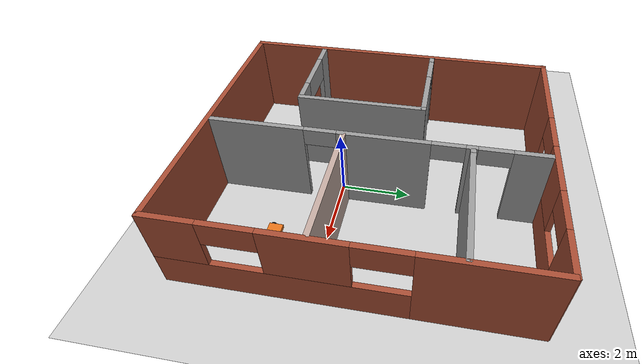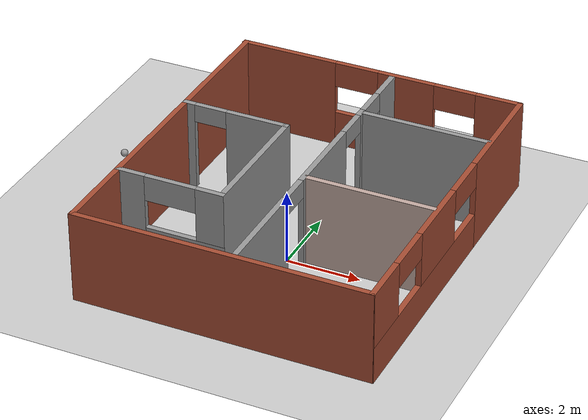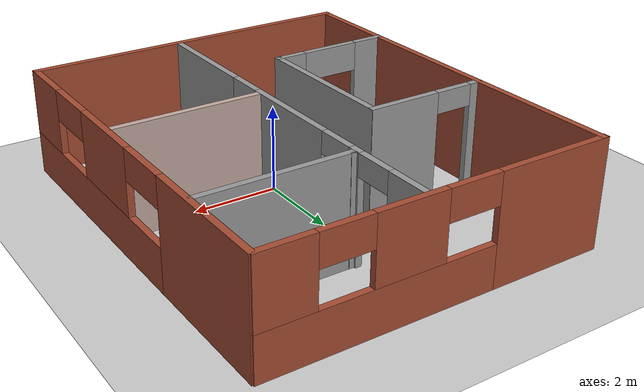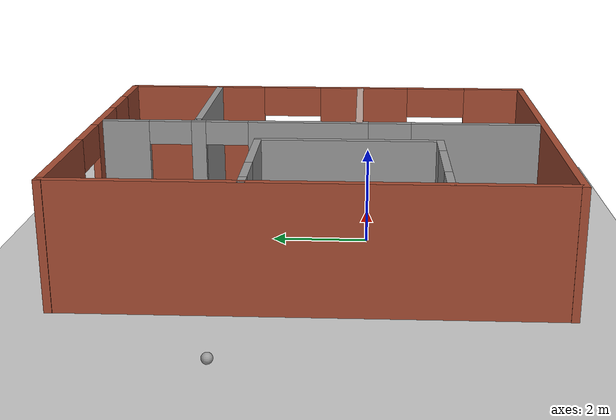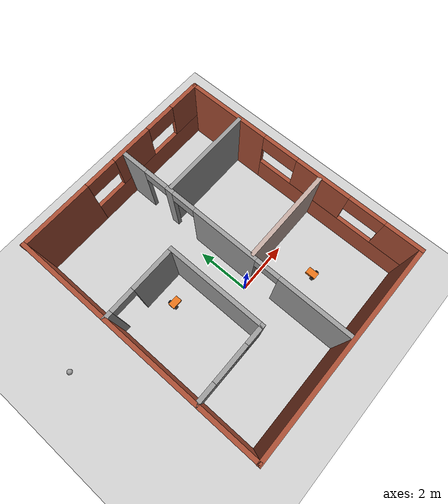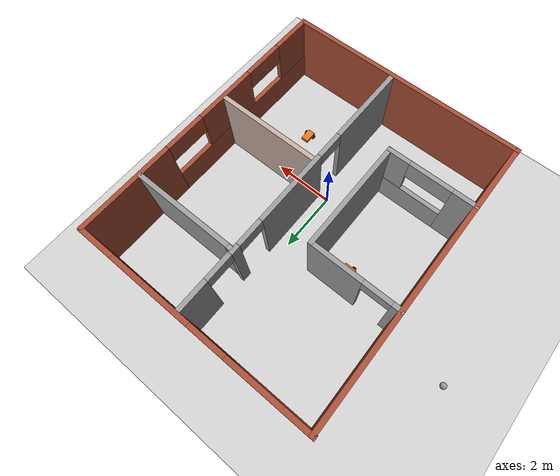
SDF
<sdf version="1.6">
 <world name="default">
  <light name="sun" type="directional">
   <pose>0 0 10 0 -0 0</pose>
   <diffuse>0.8 0.8 0.8 1</diffuse>
   <specular>0.2 0.2 0.2 1</specular>
   <attenuation>
    <range>1000</range>
    <constant>0.9</constant>
    <linear>0.01</linear>
    <quadratic>0.001</quadratic>
   </attenuation>
   <direction>-0.5 0.1 -0.9</direction>
   <spot><inner_angle>0</inner_angle><outer_angle>0</outer_angle><falloff>0</falloff></spot>
  </light>
  <include><uri>model://ground_plane</uri></include>
  <include><uri>model://my_building</uri></include>
  <include><uri>model://my_bot</uri><name>my_bot_1</name><pose>-2 1.5 0 0 0 0</pose></include>
  <include><uri>model://my_bot</uri><name>my_bot_2</name><pose>2 -1.5 0 0 0 1.5707</pose></include>
  <include><uri>model://my_ball</uri><pose>-6.02926 2.53512 0.1 0 0 0</pose></include>
  <plugin filename="libcollision_map_creator.so" name="collision_map_creator"/>
 </world>
</sdf>

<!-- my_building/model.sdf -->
<sdf version='1.7'>
  <model name='my_world_example'>
    <pose>-0.006622 1.02346 0 0 -0 0</pose>
    <link name='Wall_14'>
      <collision name='Wall_14_Collision'>
        <geometry>
          <box>
            <size>0.15 0.15 2.5</size>
          </box>
        </geometry>
        <pose>0 0 1.25 0 -0 0</pose>
      </collision>
      <visual name='Wall_14_Visual'>
        <pose>0 0 1.25 0 -0 0</pose>
        <geometry>
          <box>
            <size>0.15 0.15 2.5</size>
          </box>
        </geometry>
        <material>
          <script>
            <uri>file://media/materials/scripts/gazebo.material</uri>
            <name>Gazebo/Grey</name>
          </script>
          <ambient>1 1 1 1</ambient>
        </material>
        <meta>
          <layer>0</layer>
        </meta>
      </visual>
      <pose>0.509968 2.60791 0 0 -0 0</pose>
    </link>
    <link name='Wall_3'>
      <pose>3.93862 -0.015464 0 0 -0 -1.5708</pose>
      <visual name='Wall_3_Visual_0'>
        <pose>-3.13619 0 1.25 0 -0 0</pose>
        <geometry>
          <box>
            <size>3.22762 0.15 2.5</size>
          </box>
        </geometry>
        <material>
          <script>
            <uri>file://media/materials/scripts/gazebo.material</uri>
            <name>Gazebo/Bricks</name>
          </script>
          <ambient>1 1 1 1</ambient>
        </material>
        <meta>
          <layer>0</layer>
        </meta>
      </visual>
      <collision name='Wall_3_Collision_0'>
        <geometry>
          <box>
            <size>3.22762 0.15 2.5</size>
          </box>
        </geometry>
        <pose>-3.13619 0 1.25 0 -0 0</pose>
      </collision>
      <visual name='Wall_3_Visual_1'>
        <pose>1.61381 0 0.5 0 -0 0</pose>
        <geometry>
          <box>
            <size>6.27238 0.15 1</size>
          </box>
        </geometry>
        <material>
          <script>
            <uri>file://media/materials/scripts/gazebo.material</uri>
            <name>Gazebo/Bricks</name>
          </script>
          <ambient>1 1 1 1</ambient>
        </material>
        <meta>
          <layer>0</layer>
        </meta>
      </visual>
      <collision name='Wall_3_Collision_1'>
        <geometry>
          <box>
            <size>6.27238 0.15 1</size>
          </box>
        </geometry>
        <pose>1.61381 0 0.5 0 -0 0</pose>
      </collision>
      <visual name='Wall_3_Visual_2'>
        <pose>0.90617 0 1.75 0 -0 0</pose>
        <geometry>
          <box>
            <size>2.10109 0.15 1.5</size>
          </box>
        </geometry>
        <material>
          <script>
            <uri>file://media/materials/scripts/gazebo.material</uri>
            <name>Gazebo/Bricks</name>
          </script>
          <ambient>1 1 1 1</ambient>
        </material>
        <meta>
          <layer>0</layer>
        </meta>
      </visual>
      <collision name='Wall_3_Collision_2'>
        <geometry>
          <box>
            <size>2.10109 0.15 1.5</size>
          </box>
        </geometry>
        <pose>0.90617 0 1.75 0 -0 0</pose>
      </collision>
      <visual name='Wall_3_Visual_3'>
        <pose>4.03836 0 1.75 0 -0 0</pose>
        <geometry>
          <box>
            <size>1.42328 0.15 1.5</size>
          </box>
        </geometry>
        <material>
          <script>
            <uri>file://media/materials/scripts/gazebo.material</uri>
            <name>Gazebo/Bricks</name>
          </script>
          <ambient>1 1 1 1</ambient>
        </material>
        <meta>
          <layer>0</layer>
        </meta>
      </visual>
      <collision name='Wall_3_Collision_3'>
        <geometry>
          <box>
            <size>1.42328 0.15 1.5</size>
          </box>
        </geometry>
        <pose>4.03836 0 1.75 0 -0 0</pose>
      </collision>
      <visual name='Wall_3_Visual_4'>
        <pose>-0.833377 0 2.15 0 -0 0</pose>
        <geometry>
          <box>
            <size>1.378 0.15 0.7</size>
          </box>
        </geometry>
        <material>
          <script>
            <uri>file://media/materials/scripts/gazebo.material</uri>
            <name>Gazebo/Bricks</name>
          </script>
          <ambient>1 1 1 1</ambient>
        </material>
        <meta>
          <layer>0</layer>
        </meta>
      </visual>
      <collision name='Wall_3_Collision_4'>
        <geometry>
          <box>
            <size>1.378 0.15 0.7</size>
          </box>
        </geometry>
        <pose>-0.833377 0 2.15 0 -0 0</pose>
      </collision>
      <visual name='Wall_3_Visual_5'>
        <pose>2.64172 0 2.15 0 -0 0</pose>
        <geometry>
          <box>
            <size>1.37 0.15 0.7</size>
          </box>
        </geometry>
        <material>
          <script>
            <uri>file://media/materials/scripts/gazebo.material</uri>
            <name>Gazebo/Bricks</name>
          </script>
          <ambient>1 1 1 1</ambient>
        </material>
        <meta>
          <layer>0</layer>
        </meta>
      </visual>
      <collision name='Wall_3_Collision_5'>
        <geometry>
          <box>
            <size>1.37 0.15 0.7</size>
          </box>
        </geometry>
        <pose>2.64172 0 2.15 0 -0 0</pose>
      </collision>
    </link>
    <link name='Wall_33'>
      <collision name='Wall_33_Collision'>
        <geometry>
          <box>
            <size>9.5 0.15 2.5</size>
          </box>
        </geometry>
        <pose>0 0 1.25 0 -0 0</pose>
      </collision>
      <visual name='Wall_33_Visual'>
        <pose>0 0 1.25 0 -0 0</pose>
        <geometry>
          <box>
            <size>9.5 0.15 2.5</size>
          </box>
        </geometry>
        <material>
          <script>
            <uri>file://media/materials/scripts/gazebo.material</uri>
            <name>Gazebo/Bricks</name>
          </script>
          <ambient>1 1 1 1</ambient>
        </material>
        <meta>
          <layer>0</layer>
        </meta>
      </visual>
      <pose>-3.92017 0.013616 0 0 -0 -1.5708</pose>
    </link>
    <link name='Wall_35'>
      <pose>-2.48639 1.16661 0 0 -0 0</pose>
      <visual name='Wall_35_Visual_0'>
        <pose>-1.32433 0 1.25 0 -0 0</pose>
        <geometry>
          <box>
            <size>0.35134 0.15 2.5</size>
          </box>
        </geometry>
        <material>
          <script>
            <uri>file://media/materials/scripts/gazebo.material</uri>
            <name>Gazebo/Grey</name>
          </script>
          <ambient>1 1 1 1</ambient>
        </material>
        <meta>
          <layer>0</layer>
        </meta>
      </visual>
      <collision name='Wall_35_Collision_0'>
        <geometry>
          <box>
            <size>0.35134 0.15 2.5</size>
          </box>
        </geometry>
        <pose>-1.32433 0 1.25 0 -0 0</pose>
      </collision>
      <visual name='Wall_35_Visual_1'>
        <pose>0.62567 0 1.25 0 -0 0</pose>
        <geometry>
          <box>
            <size>1.74866 0.15 2.5</size>
          </box>
        </geometry>
        <material>
          <script>
            <uri>file://media/materials/scripts/gazebo.material</uri>
            <name>Gazebo/Grey</name>
          </script>
          <ambient>1 1 1 1</ambient>
        </material>
        <meta>
          <layer>0</layer>
        </meta>
      </visual>
      <collision name='Wall_35_Collision_1'>
        <geometry>
          <box>
            <size>1.74866 0.15 2.5</size>
          </box>
        </geometry>
        <pose>0.62567 0 1.25 0 -0 0</pose>
      </collision>
      <visual name='Wall_35_Visual_2'>
        <pose>-0.69866 0 2.25 0 -0 0</pose>
        <geometry>
          <box>
            <size>0.9 0.15 0.5</size>
          </box>
        </geometry>
        <material>
          <script>
            <uri>file://media/materials/scripts/gazebo.material</uri>
            <name>Gazebo/Grey</name>
          </script>
          <ambient>1 1 1 1</ambient>
        </material>
        <meta>
          <layer>0</layer>
        </meta>
      </visual>
      <collision name='Wall_35_Collision_2'>
        <geometry>
          <box>
            <size>0.9 0.15 0.5</size>
          </box>
        </geometry>
        <pose>-0.69866 0 2.25 0 -0 0</pose>
      </collision>
    </link>
    <link name='Wall_38'>
      <pose>-0.013622 4.69452 0 0 -0 0</pose>
      <visual name='Wall_38_Visual_0'>
        <pose>-2.6211 0 1.25 0 -0 0</pose>
        <geometry>
          <box>
            <size>2.75779 0.15 2.5</size>
          </box>
        </geometry>
        <material>
          <script>
            <uri>file://media/materials/scripts/gazebo.material</uri>
            <name>Gazebo/Bricks</name>
          </script>
          <ambient>1 1 1 1</ambient>
        </material>
        <meta>
          <layer>0</layer>
        </meta>
      </visual>
      <collision name='Wall_38_Collision_0'>
        <geometry>
          <box>
            <size>2.75779 0.15 2.5</size>
          </box>
        </geometry>
        <pose>-2.6211 0 1.25 0 -0 0</pose>
      </collision>
      <visual name='Wall_38_Visual_1'>
        <pose>1.3789 0 0.5 0 -0 0</pose>
        <geometry>
          <box>
            <size>5.24221 0.15 1</size>
          </box>
        </geometry>
        <material>
          <script>
            <uri>file://media/materials/scripts/gazebo.material</uri>
            <name>Gazebo/Bricks</name>
          </script>
          <ambient>1 1 1 1</ambient>
        </material>
        <meta>
          <layer>0</layer>
        </meta>
      </visual>
      <collision name='Wall_38_Collision_1'>
        <geometry>
          <box>
            <size>5.24221 0.15 1</size>
          </box>
        </geometry>
        <pose>1.3789 0 0.5 0 -0 0</pose>
      </collision>
      <visual name='Wall_38_Visual_2'>
        <pose>0.777661 0 1.75 0 -0 0</pose>
        <geometry>
          <box>
            <size>1.59774 0.15 1.5</size>
          </box>
        </geometry>
        <material>
          <script>
            <uri>file://media/materials/scripts/gazebo.material</uri>
            <name>Gazebo/Bricks</name>
          </script>
          <ambient>1 1 1 1</ambient>
        </material>
        <meta>
          <layer>0</layer>
        </meta>
      </visual>
      <collision name='Wall_38_Collision_2'>
        <geometry>
          <box>
            <size>1.59774 0.15 1.5</size>
          </box>
        </geometry>
        <pose>0.777661 0 1.75 0 -0 0</pose>
      </collision>
      <visual name='Wall_38_Visual_3'>
        <pose>3.36977 0 1.75 0 -0 0</pose>
        <geometry>
          <box>
            <size>1.26047 0.15 1.5</size>
          </box>
        </geometry>
        <material>
          <script>
            <uri>file://media/materials/scripts/gazebo.material</uri>
            <name>Gazebo/Bricks</name>
          </script>
          <ambient>1 1 1 1</ambient>
        </material>
        <meta>
          <layer>0</layer>
        </meta>
      </visual>
      <collision name='Wall_38_Collision_3'>
        <geometry>
          <box>
            <size>1.26047 0.15 1.5</size>
          </box>
        </geometry>
        <pose>3.36977 0 1.75 0 -0 0</pose>
      </collision>
      <visual name='Wall_38_Visual_4'>
        <pose>-0.631709 0 2.15 0 -0 0</pose>
        <geometry>
          <box>
            <size>1.221 0.15 0.7</size>
          </box>
        </geometry>
        <material>
          <script>
            <uri>file://media/materials/scripts/gazebo.material</uri>
            <name>Gazebo/Bricks</name>
          </script>
          <ambient>1 1 1 1</ambient>
        </material>
        <meta>
          <layer>0</layer>
        </meta>
      </visual>
      <collision name='Wall_38_Collision_4'>
        <geometry>
          <box>
            <size>1.221 0.15 0.7</size>
          </box>
        </geometry>
        <pose>-0.631709 0 2.15 0 -0 0</pose>
      </collision>
      <visual name='Wall_38_Visual_5'>
        <pose>2.15803 0 2.15 0 -0 0</pose>
        <geometry>
          <box>
            <size>1.163 0.15 0.7</size>
          </box>
        </geometry>
        <material>
          <script>
            <uri>file://media/materials/scripts/gazebo.material</uri>
            <name>Gazebo/Bricks</name>
          </script>
          <ambient>1 1 1 1</ambient>
        </material>
        <meta>
          <layer>0</layer>
        </meta>
      </visual>
      <collision name='Wall_38_Collision_5'>
        <geometry>
          <box>
            <size>1.163 0.15 0.7</size>
          </box>
        </geometry>
        <pose>2.15803 0 2.15 0 -0 0</pose>
      </collision>
    </link>
    <link name='Wall_42'>
      <pose>0.387902 0.000987 0 0 -0 -1.5708</pose>
      <visual name='Wall_42_Visual_0'>
        <pose>-4.12408 0 1.25 0 -0 0</pose>
        <geometry>
          <box>
            <size>1.00184 0.15 2.5</size>
          </box>
        </geometry>
        <material>
          <script>
            <uri>file://media/materials/scripts/gazebo.material</uri>
            <name>Gazebo/Grey</name>
          </script>
          <ambient>1 1 1 1</ambient>
        </material>
        <meta>
          <layer>0</layer>
        </meta>
      </visual>
      <collision name='Wall_42_Collision_0'>
        <geometry>
          <box>
            <size>1.00184 0.15 2.5</size>
          </box>
        </geometry>
        <pose>-4.12408 0 1.25 0 -0 0</pose>
      </collision>
      <visual name='Wall_42_Visual_1'>
        <pose>-2.5695 0 1.25 0 -0 0</pose>
        <geometry>
          <box>
            <size>0.307325 0.15 2.5</size>
          </box>
        </geometry>
        <material>
          <script>
            <uri>file://media/materials/scripts/gazebo.material</uri>
            <name>Gazebo/Grey</name>
          </script>
          <ambient>1 1 1 1</ambient>
        </material>
        <meta>
          <layer>0</layer>
        </meta>
      </visual>
      <collision name='Wall_42_Collision_1'>
        <geometry>
          <box>
            <size>0.307325 0.15 2.5</size>
          </box>
        </geometry>
        <pose>-2.5695 0 1.25 0 -0 0</pose>
      </collision>
      <visual name='Wall_42_Visual_2'>
        <pose>-0.245259 0 1.25 0 -0 0</pose>
        <geometry>
          <box>
            <size>2.54116 0.15 2.5</size>
          </box>
        </geometry>
        <material>
          <script>
            <uri>file://media/materials/scripts/gazebo.material</uri>
            <name>Gazebo/Grey</name>
          </script>
          <ambient>1 1 1 1</ambient>
        </material>
        <meta>
          <layer>0</layer>
        </meta>
      </visual>
      <collision name='Wall_42_Collision_2'>
        <geometry>
          <box>
            <size>2.54116 0.15 2.5</size>
          </box>
        </geometry>
        <pose>-0.245259 0 1.25 0 -0 0</pose>
      </collision>
      <visual name='Wall_42_Visual_3'>
        <pose>3.27516 0 1.25 0 -0 0</pose>
        <geometry>
          <box>
            <size>2.69968 0.15 2.5</size>
          </box>
        </geometry>
        <material>
          <script>
            <uri>file://media/materials/scripts/gazebo.material</uri>
            <name>Gazebo/Grey</name>
          </script>
          <ambient>1 1 1 1</ambient>
        </material>
        <meta>
          <layer>0</layer>
        </meta>
      </visual>
      <collision name='Wall_42_Collision_3'>
        <geometry>
          <box>
            <size>2.69968 0.15 2.5</size>
          </box>
        </geometry>
        <pose>3.27516 0 1.25 0 -0 0</pose>
      </collision>
      <visual name='Wall_42_Visual_4'>
        <pose>-3.17316 0 2.25 0 -0 0</pose>
        <geometry>
          <box>
            <size>0.9 0.15 0.5</size>
          </box>
        </geometry>
        <material>
          <script>
            <uri>file://media/materials/scripts/gazebo.material</uri>
            <name>Gazebo/Grey</name>
          </script>
          <ambient>1 1 1 1</ambient>
        </material>
        <meta>
          <layer>0</layer>
        </meta>
      </visual>
      <collision name='Wall_42_Collision_4'>
        <geometry>
          <box>
            <size>0.9 0.15 0.5</size>
          </box>
        </geometry>
        <pose>-3.17316 0 2.25 0 -0 0</pose>
      </collision>
      <visual name='Wall_42_Visual_5'>
        <pose>-1.96584 0 2.25 0 -0 0</pose>
        <geometry>
          <box>
            <size>0.9 0.15 0.5</size>
          </box>
        </geometry>
        <material>
          <script>
            <uri>file://media/materials/scripts/gazebo.material</uri>
            <name>Gazebo/Grey</name>
          </script>
          <ambient>1 1 1 1</ambient>
        </material>
        <meta>
          <layer>0</layer>
        </meta>
      </visual>
      <collision name='Wall_42_Collision_5'>
        <geometry>
          <box>
            <size>0.9 0.15 0.5</size>
          </box>
        </geometry>
        <pose>-1.96584 0 2.25 0 -0 0</pose>
      </collision>
      <visual name='Wall_42_Visual_6'>
        <pose>1.47532 0 2.25 0 -0 0</pose>
        <geometry>
          <box>
            <size>0.9 0.15 0.5</size>
          </box>
        </geometry>
        <material>
          <script>
            <uri>file://media/materials/scripts/gazebo.material</uri>
            <name>Gazebo/Grey</name>
          </script>
          <ambient>1 1 1 1</ambient>
        </material>
        <meta>
          <layer>0</layer>
        </meta>
      </visual>
      <collision name='Wall_42_Collision_6'>
        <geometry>
          <box>
            <size>0.9 0.15 0.5</size>
          </box>
        </geometry>
        <pose>1.47532 0 2.25 0 -0 0</pose>
      </collision>
    </link>
    <link name='Wall_45'>
      <collision name='Wall_45_Collision'>
        <geometry>
          <box>
            <size>3.75 0.15 2.5</size>
          </box>
        </geometry>
        <pose>0 0 1.25 0 -0 0</pose>
      </collision>
      <visual name='Wall_45_Visual'>
        <pose>0 0 1.25 0 -0 0</pose>
        <geometry>
          <box>
            <size>3.75 0.15 2.5</size>
          </box>
        </geometry>
        <material>
          <script>
            <uri>file://media/materials/scripts/gazebo.material</uri>
            <name>Gazebo/Grey</name>
          </script>
          <ambient>1 1 1 1</ambient>
        </material>
        <meta>
          <layer>0</layer>
        </meta>
      </visual>
      <pose>-1.05416 -0.637427 0 0 -0 1.5708</pose>
    </link>
    <link name='Wall_52'>
      <pose>-2.47916 -2.43743 0 0 -0 0</pose>
      <visual name='Wall_52_Visual_0'>
        <pose>-1.09324 0 1.25 0 -0 0</pose>
        <geometry>
          <box>
            <size>0.813526 0.15 2.5</size>
          </box>
        </geometry>
        <material>
          <script>
            <uri>file://media/materials/scripts/gazebo.material</uri>
            <name>Gazebo/Grey</name>
          </script>
          <ambient>1 1 1 1</ambient>
        </material>
        <meta>
          <layer>0</layer>
        </meta>
      </visual>
      <collision name='Wall_52_Collision_0'>
        <geometry>
          <box>
            <size>0.813526 0.15 2.5</size>
          </box>
        </geometry>
        <pose>-1.09324 0 1.25 0 -0 0</pose>
      </collision>
      <visual name='Wall_52_Visual_1'>
        <pose>0.406763 0 0.5 0 -0 0</pose>
        <geometry>
          <box>
            <size>2.18647 0.15 1</size>
          </box>
        </geometry>
        <material>
          <script>
            <uri>file://media/materials/scripts/gazebo.material</uri>
            <name>Gazebo/Grey</name>
          </script>
          <ambient>1 1 1 1</ambient>
        </material>
        <meta>
          <layer>0</layer>
        </meta>
      </visual>
      <collision name='Wall_52_Collision_1'>
        <geometry>
          <box>
            <size>2.18647 0.15 1</size>
          </box>
        </geometry>
        <pose>0.406763 0 0.5 0 -0 0</pose>
      </collision>
      <visual name='Wall_52_Visual_2'>
        <pose>1.11076 0 1.75 0 -0 0</pose>
        <geometry>
          <box>
            <size>0.778474 0.15 1.5</size>
          </box>
        </geometry>
        <material>
          <script>
            <uri>file://media/materials/scripts/gazebo.material</uri>
            <name>Gazebo/Grey</name>
          </script>
          <ambient>1 1 1 1</ambient>
        </material>
        <meta>
          <layer>0</layer>
        </meta>
      </visual>
      <collision name='Wall_52_Collision_2'>
        <geometry>
          <box>
            <size>0.778474 0.15 1.5</size>
          </box>
        </geometry>
        <pose>1.11076 0 1.75 0 -0 0</pose>
      </collision>
      <visual name='Wall_52_Visual_3'>
        <pose>0.017526 0 2.15 0 -0 0</pose>
        <geometry>
          <box>
            <size>1.408 0.15 0.7</size>
          </box>
        </geometry>
        <material>
          <script>
            <uri>file://media/materials/scripts/gazebo.material</uri>
            <name>Gazebo/Grey</name>
          </script>
          <ambient>1 1 1 1</ambient>
        </material>
        <meta>
          <layer>0</layer>
        </meta>
      </visual>
      <collision name='Wall_52_Collision_3'>
        <geometry>
          <box>
            <size>1.408 0.15 0.7</size>
          </box>
        </geometry>
        <pose>0.017526 0 2.15 0 -0 0</pose>
      </collision>
    </link>
    <link name='Wall_59'>
      <collision name='Wall_59_Collision'>
        <geometry>
          <box>
            <size>8 0.15 2.5</size>
          </box>
        </geometry>
        <pose>0 0 1.25 0 -0 0</pose>
      </collision>
      <visual name='Wall_59_Visual'>
        <pose>0 0 1.25 0 -0 0</pose>
        <geometry>
          <box>
            <size>8 0.15 2.5</size>
          </box>
        </geometry>
        <material>
          <script>
            <uri>file://media/materials/scripts/gazebo.material</uri>
            <name>Gazebo/Bricks</name>
          </script>
          <ambient>1 1 1 1</ambient>
        </material>
        <meta>
          <layer>0</layer>
        </meta>
      </visual>
      <pose>-0.003508 -4.69452 0 0 -0 3.14159</pose>
    </link>
    <link name='Wall_61'>
      <collision name='Wall_61_Collision'>
        <geometry>
          <box>
            <size>3.5 0.15 2.5</size>
          </box>
        </geometry>
        <pose>0 0 1.25 0 -0 0</pose>
      </collision>
      <visual name='Wall_61_Visual'>
        <pose>0 0 1.25 0 -0 0</pose>
        <geometry>
          <box>
            <size>3.5 0.15 2.5</size>
          </box>
        </geometry>
        <material>
          <script>
            <uri>file://media/materials/scripts/gazebo.material</uri>
            <name>Gazebo/Grey</name>
          </script>
          <ambient>0.760784 0.662745 0.627451 1</ambient>
        </material>
        <meta>
          <layer>0</layer>
        </meta>
      </visual>
      <pose>2.14562 -0.833464 0 0 -0 0</pose>
    </link>
    <link name='Wall_8'>
      <collision name='Wall_8_Collision'>
        <geometry>
          <box>
            <size>3.5 0.15 2.5</size>
          </box>
        </geometry>
        <pose>0 0 1.25 0 -0 0</pose>
      </collision>
      <visual name='Wall_8_Visual'>
        <pose>0 0 1.25 0 -0 0</pose>
        <geometry>
          <box>
            <size>3.5 0.15 2.5</size>
          </box>
        </geometry>
        <material>
          <script>
            <uri>file://media/materials/scripts/gazebo.material</uri>
            <name>Gazebo/Grey</name>
          </script>
          <ambient>1 1 1 1</ambient>
        </material>
        <meta>
          <layer>0</layer>
        </meta>
      </visual>
      <pose>2.18497 2.60122 0 0 -0 0</pose>
    </link>
    <static>1</static>
  </model>
</sdf>

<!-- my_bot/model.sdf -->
<sdf version="1.6">
  <model name="my_bot">
    <link name="chassis">
      <pose>0 0 0.1 0 0 0</pose>
      <inertial>
        <mass>2.0</mass>
        <inertia><ixx>0.02</ixx><iyy>0.03</iyy><izz>0.04</izz><ixy>0</ixy><ixz>0</ixz><iyz>0</iyz></inertia>
      </inertial>
      <collision name="c">
        <geometry><box><size>0.4 0.25 0.12</size></box></geometry>
      </collision>
      <visual name="v">
        <geometry><box><size>0.4 0.25 0.12</size></box></geometry>
        <material><ambient>0.9 0.45 0.1 1</ambient><diffuse>0.9 0.45 0.1 1</diffuse></material>
      </visual>
    </link>

    <link name="left_wheel">
      <pose>-0.1 0.16 0.07 1.5707 0 0</pose>
      <inertial>
        <mass>0.3</mass>
        <inertia><ixx>0.001</ixx><iyy>0.001</iyy><izz>0.001</izz><ixy>0</ixy><ixz>0</ixz><iyz>0</iyz></inertia>
      </inertial>
      <collision name="c">
        <geometry><cylinder><radius>0.07</radius><length>0.05</length></cylinder></geometry>
      </collision>
      <visual name="v">
        <geometry><cylinder><radius>0.07</radius><length>0.05</length></cylinder></geometry>
        <material><ambient>0.1 0.1 0.1 1</ambient><diffuse>0.1 0.1 0.1 1</diffuse></material>
      </visual>
    </link>

    <link name="right_wheel">
      <pose>-0.1 -0.16 0.07 1.5707 0 0</pose>
      <inertial>
        <mass>0.3</mass>
        <inertia><ixx>0.001</ixx><iyy>0.001</iyy><izz>0.001</izz><ixy>0</ixy><ixz>0</ixz><iyz>0</iyz></inertia>
      </inertial>
      <collision name="c">
        <geometry><cylinder><radius>0.07</radius><length>0.05</length></cylinder></geometry>
      </collision>
      <visual name="v">
        <geometry><cylinder><radius>0.07</radius><length>0.05</length></cylinder></geometry>
        <material><ambient>0.1 0.1 0.1 1</ambient><diffuse>0.1 0.1 0.1 1</diffuse></material>
      </visual>
    </link>

    <link name="caster">
      <pose>0.15 0 0.05 0 0 0</pose>
      <inertial>
        <mass>0.1</mass>
        <inertia><ixx>0.0001</ixx><iyy>0.0001</iyy><izz>0.0001</izz><ixy>0</ixy><ixz>0</ixz><iyz>0</iyz></inertia>
      </inertial>
      <collision name="c">
        <geometry><sphere><radius>0.05</radius></sphere></geometry>
        <surface><friction><ode><mu>0</mu><mu2>0</mu2></ode></friction></surface>
      </collision>
      <visual name="v">
        <geometry><sphere><radius>0.05</radius></sphere></geometry>
        <material><ambient>0.1 0.1 0.1 1</ambient><diffuse>0.1 0.1 0.1 1</diffuse></material>
      </visual>
    </link>

    <joint name="left_wheel_joint" type="revolute">
      <parent>chassis</parent>
      <child>left_wheel</child>
      <axis>
        <xyz>0 1 0</xyz>
        <limit><lower>-1e16</lower><upper>1e16</upper></limit>
      </axis>
    </joint>

    <joint name="right_wheel_joint" type="revolute">
      <parent>chassis</parent>
      <child>right_wheel</child>
      <axis>
        <xyz>0 1 0</xyz>
        <limit><lower>-1e16</lower><upper>1e16</upper></limit>
      </axis>
    </joint>

    <joint name="caster_joint" type="fixed">
      <parent>chassis</parent>
      <child>caster</child>
    </joint>
  </model>
</sdf>

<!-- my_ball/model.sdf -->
<sdf version='1.6'>
  <model name='my_ball'>
    <link name='link_0'>
      <inertial>
        <mass>1</mass>
        <inertia>
          <ixx>0.1</ixx>
          <ixy>0</ixy>
          <ixz>0</ixz>
          <iyy>0.1</iyy>
          <iyz>0</iyz>
          <izz>0.1</izz>
        </inertia>
        <pose frame=''>0 0 0 0 -0 0</pose>
      </inertial>
      <pose frame=''>0 0 0.1 0 -0 0</pose>
      <gravity>1</gravity>
      <self_collide>0</self_collide>
      <kinematic>0</kinematic>
      <enable_wind>0</enable_wind>
      <visual name='visual'>
        <pose frame=''>0 0 0 0 -0 0</pose>
        <geometry>
          <sphere>
            <radius>0.1</radius>
          </sphere>
        </geometry>
        <material>
          <lighting>1</lighting>
          <script>
            <uri>file://media/materials/scripts/gazebo.material</uri>
            <name>Gazebo/Grey</name>
          </script>
          <shader type='vertex'>
            <normal_map>__default__</normal_map>
          </shader>
          <ambient>1 1 1 1</ambient>
          <diffuse>1 1 1 1</diffuse>
          <specular>1 1 1 1</specular>
          <emissive>1 1 1 1</emissive>
        </material>
        <transparency>0</transparency>
        <cast_shadows>1</cast_shadows>
      </visual>
      <collision name='collision'>
        <laser_retro>0</laser_retro>
        <max_contacts>10</max_contacts>
        <pose frame=''>0 0 0 0 -0 0</pose>
        <geometry>
          <sphere>
            <radius>0.1</radius>
          </sphere>
        </geometry>
        <surface>
          <friction>
            <ode>
              <mu>1</mu>
              <mu2>1</mu2>
              <fdir1>0 0 0</fdir1>
              <slip1>0</slip1>
              <slip2>0</slip2>
            </ode>
            <torsional>
              <coefficient>1</coefficient>
              <patch_radius>0</patch_radius>
              <surface_radius>0</surface_radius>
              <use_patch_radius>1</use_patch_radius>
              <ode>
                <slip>0</slip>
              </ode>
            </torsional>
          </friction>
          <bounce>
            <restitution_coefficient>0</restitution_coefficient>
            <threshold>1e+06</threshold>
          </bounce>
          <contact>
            <collide_without_contact>0</collide_without_contact>
            <collide_without_contact_bitmask>1</collide_without_contact_bitmask>
            <collide_bitmask>1</collide_bitmask>
            <ode>
              <soft_cfm>0</soft_cfm>
              <soft_erp>0.2</soft_erp>
              <kp>1e+13</kp>
              <kd>1</kd>
              <max_vel>0.01</max_vel>
              <min_depth>0</min_depth>
            </ode>
            <bullet>
              <split_impulse>1</split_impulse>
              <split_impulse_penetration_threshold>-0.01</split_impulse_penetration_threshold>
              <soft_cfm>0</soft_cfm>
              <soft_erp>0.2</soft_erp>
              <kp>1e+13</kp>
              <kd>1</kd>
            </bullet>
          </contact>
        </surface>
      </collision>
    </link>
    <static>0</static>
    <allow_auto_disable>1</allow_auto_disable>
  </model>
</sdf>
